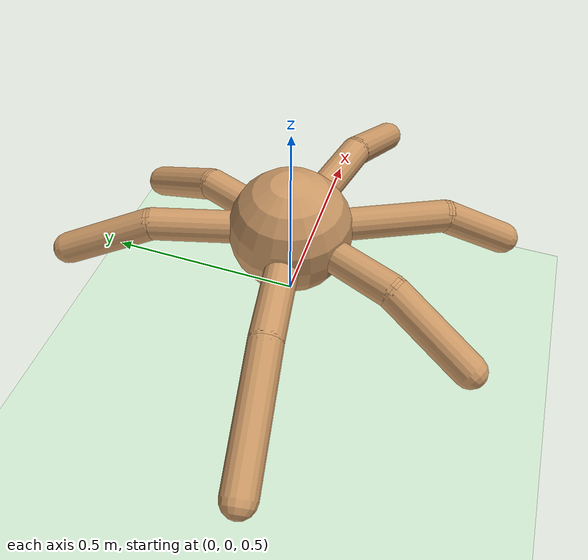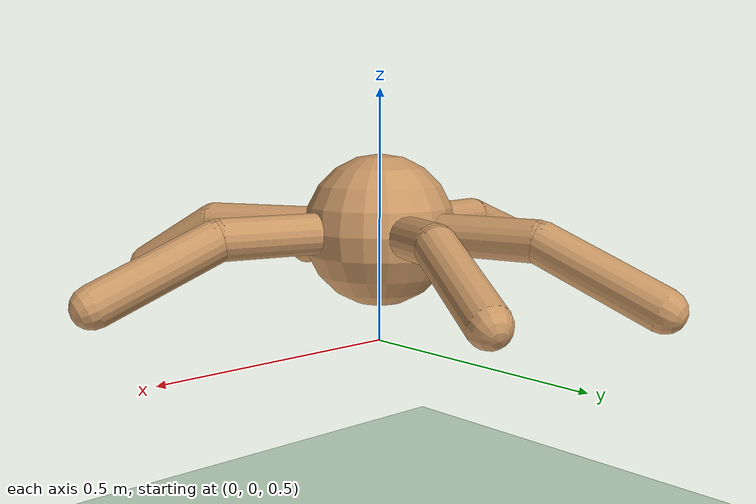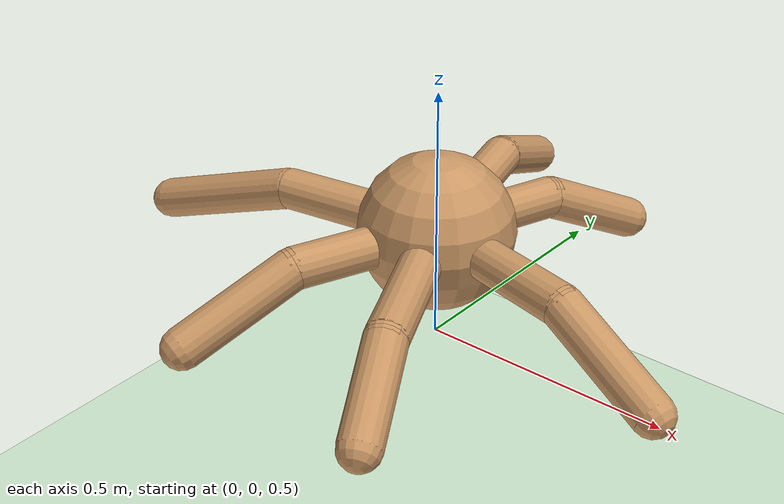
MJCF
<mujoco model="mutant_ant">
  <compiler angle="degree" coordinate="local" inertiafromgeom="true"/>
  <option integrator="RK4" timestep="0.01"/>
  <default>
    <joint armature="1" damping="1" limited="true"/>
    <geom conaffinity="1" condim="3" density="5.0" friction="1 0.5 0.5" margin="0.01" rgba="0.8 0.6 0.4 1"/>
  </default>
  <asset>
    <texture builtin="checker" height="512" name="texplane" rgb1=".2 .3 .4" rgb2=".1 0.15 0.2" type="2d" width="512"/>
    <material name="MatPlane" reflectance="0.5" shininess="1" specular="1" texrepeat="60 60" texture="texplane"/>
  </asset>
  <worldbody>
    <light cutoff="100" diffuse="1 1 1" dir="-0 0 -1.3" directional="true" exponent="1" pos="0 0 1.3" specular=".1 .1 .1"/>
    <geom conaffinity="1" condim="3" material="MatPlane" name="floor" pos="0 0 0" rgba="0.8 0.9 0.8 1" size="40 40 40" type="plane"/>
    <body name="torso" pos="0 0 0.722">
      <camera name="track" mode="trackcom" pos="0 -3 2.0" euler="60 0 0"/>
      <freejoint name="root"/>
      <geom name="torso_geom" pos="0 0 0" size="0.15" type="sphere"/>
      <body name="leg_0" pos="0 0 0" euler="0 0 -12.663">
        <geom fromto="0.0 0.0 0.0 0.1 0.0 0.0" name="aux_0_geom" size="0.04" type="capsule"/>
        <body name="leg_0_aux" pos="0.1 0.0 0">
          <joint axis="0 0 1" name="hip_0" pos="0.0 0.0 0.0" range="-27.525 34.221" type="hinge"/>
          <geom fromto="0.0 0.0 0.0 0.237 0.0 0.0" name="thigh_0_geom" size="0.04" type="capsule"/>
          <body pos="0.237 0.0 0" name="leg_0_ankle">
            <joint axis="0 1 0" name="ankle_0" pos="0.0 0.0 0.0" range="38.563 77.024" type="hinge"/>
            <geom fromto="0.0 0.0 0.0 0.226 0.0 -0.1" name="calf_0_geom" size="0.04" type="capsule"/>
          </body>
        </body>
      </body>
      <body name="leg_1" pos="0 0 0" euler="0 0 69.759">
        <geom fromto="0.0 0.0 0.0 0.1 0.0 0.0" name="aux_1_geom" size="0.04" type="capsule"/>
        <body name="leg_1_aux" pos="0.1 0.0 0">
          <joint axis="0 0 1" name="hip_1" pos="0.0 0.0 0.0" range="-50.353 41.793" type="hinge"/>
          <geom fromto="0.0 0.0 0.0 0.155 0.0 0.0" name="thigh_1_geom" size="0.04" type="capsule"/>
          <body pos="0.155 0.0 0" name="leg_1_ankle">
            <joint axis="0 1 0" name="ankle_1" pos="0.0 0.0 0.0" range="28.148 73.677" type="hinge"/>
            <geom fromto="0.0 0.0 0.0 0.197 0.0 -0.1" name="calf_1_geom" size="0.04" type="capsule"/>
          </body>
        </body>
      </body>
      <body name="leg_2" pos="0 0 0" euler="0 0 105.321">
        <geom fromto="0.0 0.0 0.0 0.1 0.0 0.0" name="aux_2_geom" size="0.04" type="capsule"/>
        <body name="leg_2_aux" pos="0.1 0.0 0">
          <joint axis="0 0 1" name="hip_2" pos="0.0 0.0 0.0" range="-26.572 28.295" type="hinge"/>
          <geom fromto="0.0 0.0 0.0 0.237 0.0 0.0" name="thigh_2_geom" size="0.04" type="capsule"/>
          <body pos="0.237 0.0 0" name="leg_2_ankle">
            <joint axis="0 1 0" name="ankle_2" pos="0.0 0.0 0.0" range="38.563 77.024" type="hinge"/>
            <geom fromto="0.0 0.0 0.0 0.226 0.0 -0.1" name="calf_2_geom" size="0.04" type="capsule"/>
          </body>
        </body>
      </body>
      <body name="leg_3" pos="0 0 0" euler="0 0 189.196">
        <geom fromto="0.0 0.0 0.0 0.1 0.0 0.0" name="aux_3_geom" size="0.04" type="capsule"/>
        <body name="leg_3_aux" pos="0.1 0.0 0">
          <joint axis="0 0 1" name="hip_3" pos="0.0 0.0 0.0" range="-28.651 29.647" type="hinge"/>
          <geom fromto="0.0 0.0 0.0 0.227 0.0 0.0" name="thigh_3_geom" size="0.04" type="capsule"/>
          <body pos="0.227 0.0 0" name="leg_3_ankle">
            <joint axis="0 1 0" name="ankle_3" pos="0.0 0.0 0.0" range="20.519 61.938" type="hinge"/>
            <geom fromto="0.0 0.0 0.0 0.295 0.0 -0.1" name="calf_3_geom" size="0.04" type="capsule"/>
          </body>
        </body>
      </body>
      <body name="leg_4" pos="0 0 0" euler="0 0 247.969">
        <geom fromto="0.0 0.0 0.0 0.1 0.0 0.0" name="aux_4_geom" size="0.04" type="capsule"/>
        <body name="leg_4_aux" pos="0.1 0.0 0">
          <joint axis="0 0 1" name="hip_4" pos="0.0 0.0 0.0" range="-28.879 26.234" type="hinge"/>
          <geom fromto="0.0 0.0 0.0 0.195 0.0 0.0" name="thigh_4_geom" size="0.04" type="capsule"/>
          <body pos="0.195 0.0 0" name="leg_4_ankle">
            <joint axis="0 1 0" name="ankle_4" pos="0.0 0.0 0.0" range="34.757 74.970" type="hinge"/>
            <geom fromto="0.0 0.0 0.0 0.218 0.0 -0.1" name="calf_4_geom" size="0.04" type="capsule"/>
          </body>
        </body>
      </body>
      <body name="leg_5" pos="0 0 0" euler="0 0 295.370">
        <geom fromto="0.0 0.0 0.0 0.1 0.0 0.0" name="aux_5_geom" size="0.04" type="capsule"/>
        <body name="leg_5_aux" pos="0.1 0.0 0">
          <joint axis="0 0 1" name="hip_5" pos="0.0 0.0 0.0" range="-32.056 31.523" type="hinge"/>
          <geom fromto="0.0 0.0 0.0 0.279 0.0 0.0" name="thigh_5_geom" size="0.04" type="capsule"/>
          <body pos="0.279 0.0 0" name="leg_5_ankle">
            <joint axis="0 1 0" name="ankle_5" pos="0.0 0.0 0.0" range="21.737 77.803" type="hinge"/>
            <geom fromto="0.0 0.0 0.0 0.170 0.0 -0.1" name="calf_5_geom" size="0.04" type="capsule"/>
          </body>
        </body>
      </body>
    </body>
  </worldbody>
  <actuator>
    <motor ctrllimited="true" ctrlrange="-1.0 1.0" joint="hip_0" gear="30"/>
    <motor ctrllimited="true" ctrlrange="-1.0 1.0" joint="ankle_0" gear="30"/>
    <motor ctrllimited="true" ctrlrange="-1.0 1.0" joint="hip_1" gear="30"/>
    <motor ctrllimited="true" ctrlrange="-1.0 1.0" joint="ankle_1" gear="30"/>
    <motor ctrllimited="true" ctrlrange="-1.0 1.0" joint="hip_2" gear="30"/>
    <motor ctrllimited="true" ctrlrange="-1.0 1.0" joint="ankle_2" gear="30"/>
    <motor ctrllimited="true" ctrlrange="-1.0 1.0" joint="hip_3" gear="30"/>
    <motor ctrllimited="true" ctrlrange="-1.0 1.0" joint="ankle_3" gear="30"/>
    <motor ctrllimited="true" ctrlrange="-1.0 1.0" joint="hip_4" gear="30"/>
    <motor ctrllimited="true" ctrlrange="-1.0 1.0" joint="ankle_4" gear="30"/>
    <motor ctrllimited="true" ctrlrange="-1.0 1.0" joint="hip_5" gear="30"/>
    <motor ctrllimited="true" ctrlrange="-1.0 1.0" joint="ankle_5" gear="30"/>
  </actuator>
</mujoco>
